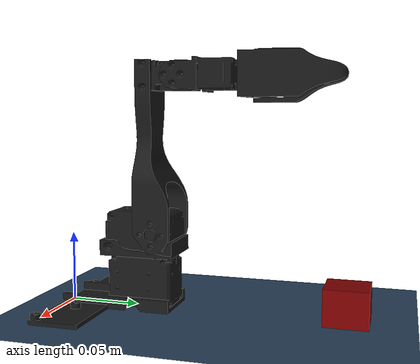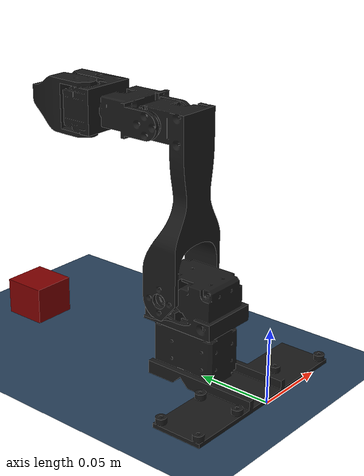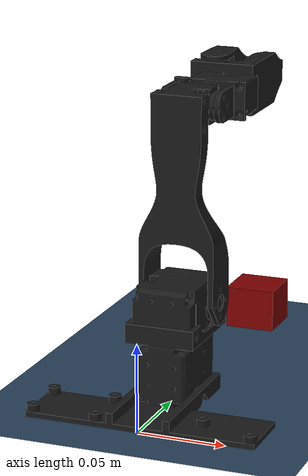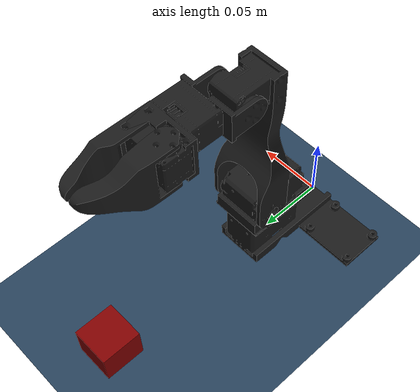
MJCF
<mujoco model="low_cost_robot scene">
  <!-- The timestep has a big influence on the contacts stability -->
  <option cone="elliptic" impratio="10" timestep="0.001"/>

  <include file="low_cost_robot.xml"/>

  <statistic center="0 0 0.1" extent="0.6"/>

  <visual>
    <headlight diffuse="0.6 0.6 0.6" ambient="0.3 0.3 0.3" specular="0 0 0"/>
    <rgba haze="0.15 0.25 0.35 1"/>
    <global azimuth="140" elevation="-30"/>
  </visual>

  <asset>
    <texture type="skybox" builtin="gradient" rgb1="0.3 0.5 0.7" rgb2="0 0 0" width="512" height="3072"/>
    <texture type="2d" name="groundplane" builtin="checker" mark="edge" rgb1="0.2 0.3 0.4" rgb2="0.1 0.2 0.3"
      markrgb="0.8 0.8 0.8" width="300" height="300"/>
    <material name="groundplane" texture="groundplane" texuniform="true" texrepeat="5 5" reflectance="0.2"/>
  </asset>

  <worldbody>
    <light pos="0 0 1.5" dir="0 0 -1" directional="true"/>
    <geom name="floor" size="0 0 0.05" type="plane" material="groundplane" pos="0 0 0" friction="0.1"/>
    <body name="box" pos="0.0 0.2 0.01">
        <freejoint name="red_box_joint"/>
        <inertial pos="0 0 0" mass="0.1" diaginertia="0.00016667 0.00016667 0.00016667"/>
        <geom friction="0.5" condim="3" pos="0 0 0" size="0.015 0.015 0.015" type="box" name="red_box" rgba="0.5 0 0 1" priority="1"/>
    </body>
  </worldbody>

</mujoco>

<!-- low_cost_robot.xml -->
<mujoco model="low_cost_robot">
    <compiler angle="radian" meshdir="assets" texturedir="assets" autolimits="true"/>
    <!-- The timestep has a big influence on the contacts stability -->
    <option cone="elliptic" impratio="10" timestep="0.001"/>

    <asset>
        <mesh file="base_link.stl" scale="0.001 0.001 0.001"/>
        <mesh file="first-bracket-motor_1.stl" scale="0.001 0.001 0.001"/>
        <mesh file="shoulder-to-elbow-motor_v1_1.stl" scale="0.001 0.001 0.001"/>
        <mesh file="elbow-to-wrist-motor-reference_v1_1.stl" scale="0.001 0.001 0.001"/>
        <mesh file="gripper-static-motor-pt1.stl" scale="0.001 0.001 0.001"/>
        <mesh file="gripper-static-motor-pt2.stl" scale="0.001 0.001 0.001"/>
        <mesh file="gripper-moving-part-dumb_v2_1.stl" scale="0.001 0.001 0.001"/>
    </asset>

    <default>
        <default class="low_cost_robot">
            <general biastype="affine"/>
            <!-- NOTE: the joint pos are defined in world frame, so they're built by summing over urdf relative joint positioning -->
            <!-- NOTE: values other than axis and pos here have not been properly identified -->
            <joint axis="0 1 0"/>
            <default class="joint1">
                <joint axis="0 0 1" pos="0.00025 0.06875 0.0409" range="-3.14158 3.14158" damping="0.1"/>
                <position ctrlrange="-3.14158 3.14158" kp="25"/>
            </default>
            <default class="joint2">
                <joint axis="1 0 0" pos="0.01945 0.06895 0.05515" range="-3.14158 3.14158" damping="0.1"/>
                <position ctrlrange="-3.14158 3.14158" kp="25"/>
            </default>
            <default class="joint3">
                <joint axis="1 0 0" pos="-0.0143 0.08375 0.16345" range="-3.14158 3.14158" damping="0.1"/>
                <position ctrlrange="-3.14158 3.14158" kp="25"/>
            </default>
            <default class="joint4">
                <joint axis="0 -1 0" pos="-0.000893 0.128688 0.163437" range="-3.14158 3.14158" damping="0.1"/>
                <position ctrlrange="-3.14158 3.14158" kp="25"/>
            </default>
            <default class="joint5">
                <joint axis="0 0 -1" pos="-0.008443 0.141678 0.177687" range="-2.45 0.032" damping="0.1"/>
                <position ctrlrange="-2.45 0.032" kp="25"/>
            </default>
        </default>
    </default>

    <worldbody>
        <body name="base_link">
            <geom type="mesh" name="base_link" mesh="base_link" rgba="0.1 0.1 0.1 1"/>
            <body name="joint1">
                <joint name="joint1" class="joint1"/>
                <geom type="mesh" name="joint1" mesh="first-bracket-motor_1" rgba="0.1 0.1 0.1 1"/>
                <body name="joint2">
                    <joint name="joint2" class="joint2"/>
                    <geom type="mesh" name="joint2" mesh="shoulder-to-elbow-motor_v1_1" rgba="0.1 0.1 0.1 1"/>
                    <body name="joint3">
                        <joint name="joint3" class="joint3"/>
                        <geom type="mesh" name="joint3" mesh="elbow-to-wrist-motor-reference_v1_1" rgba="0.1 0.1 0.1 1"/>
                        <body name="joint4">
                            <joint name="joint4" class="joint4"/>
                            <geom type="mesh" name="joint4-pt1" mesh="gripper-static-motor-pt1" rgba="0.1 0.1 0.1 1"/>
                            <geom type="mesh" name="joint4" mesh="gripper-static-motor-pt2" rgba="0.1 0.1 0.1 1" contype="0" conaffinity="0"/>

                            <!-- Rectangular pad for contact -->
                            <body name="joint4-pad">
                                <geom type="box" condim="3" friction="0.7" mass="0.01" solimp="0.95 0.99 0.001" solref="0.004 1" name="static_finger_pad" size="0.006 0.006 0.006" pos="0.0135 0.192 0.1635" priority="1" rgba="0 0 0 0"/>
                            </body>

                            <body name="joint5">
                                <joint name="joint5" class="joint5"/>
                                <geom type="mesh" name="joint5" mesh="gripper-moving-part-dumb_v2_1" rgba="0.1 0.1 0.1 1" contype="0" conaffinity="0"/>

                                <!-- Rectangular pad for contact -->
                                <body name="joint5-pad">
                                    <geom type="box" condim="3" friction="0.7" mass="0.01" solimp="0.95 0.99 0.001" solref="0.004 1" name="moving_finger_pad" size="0.006 0.006 0.006" pos="-0.0007 0.192 0.1635" euler="0 0 -0.3" priority="1" rgba="0 0 0 0"/>
                                </body>

                            </body>
                            <!-- End effector frame in the middle of the two grippers -->
                            <body>
                                <geom type="sphere" name="end_effector" size="0.001" pos="-0.005 0.1935 0.1635" contype="0" conaffinity="0" rgba="0 0 0 0"/>
                            </body>
                        </body>
                    </body>
                </body>
            </body>
        </body>
    </worldbody>

    <actuator>
        <position class="joint1" name="joint1" joint="joint1"/>
        <position class="joint2" name="joint2" joint="joint2"/>
        <position class="joint3" name="joint3" joint="joint3"/>
        <position class="joint4" name="joint4" joint="joint4"/>
        <position class="joint5" name="joint5" joint="joint5"/>
    </actuator>

</mujoco>
